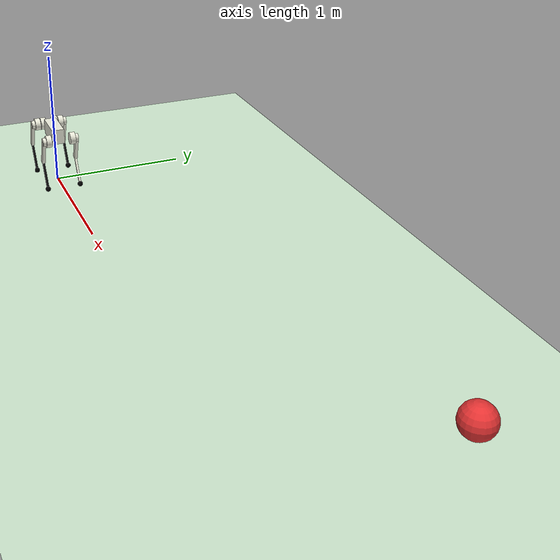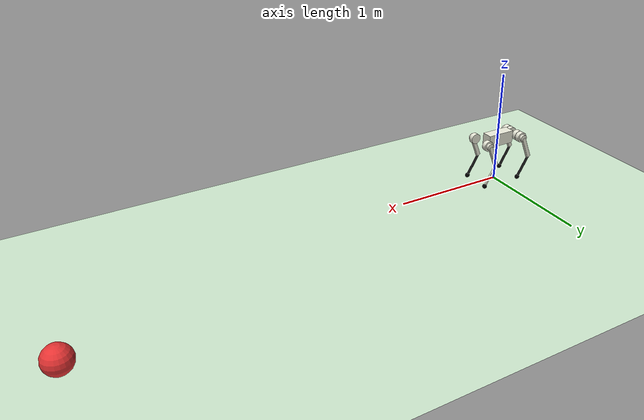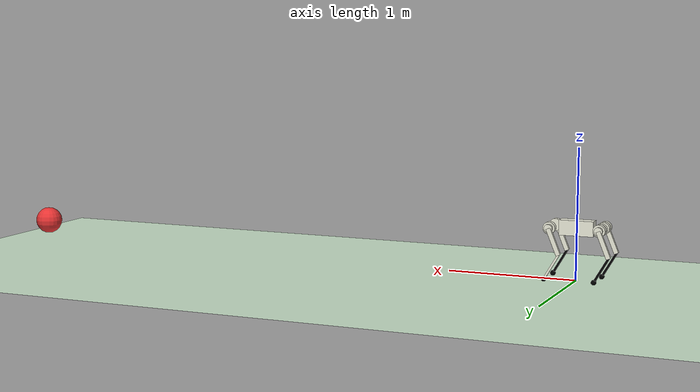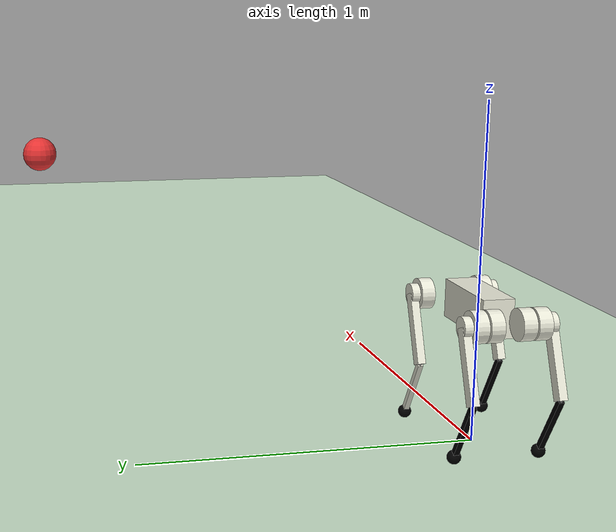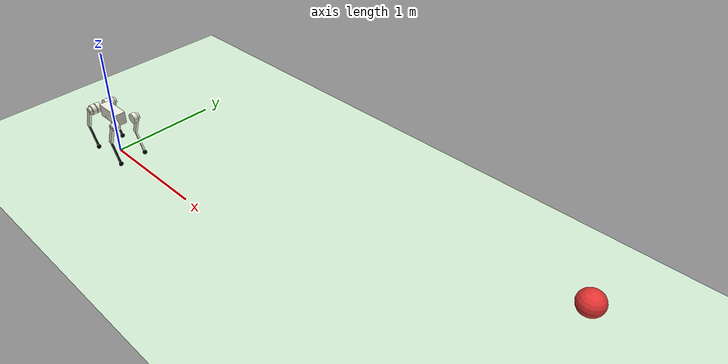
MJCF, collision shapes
<mujoco model="go1_description">
    <compiler angle="radian" coordinate="local" inertiafromgeom="true" meshdir="../meshes" texturedir="../textures" />
    <size njmax="500" nconmax="100" />
    <option integrator="RK4" timestep="0.01"/>

    <custom>
        <numeric data="0.0 0.0 0.0 0.0 0.0 0.0 0.0 0.0 0.0 0.0 0.0 0.0 0.0 0.0 0.0" name="init_qpos"/>
    </custom>

    <default>
        <geom contype="1" conaffinity="1" friction="0.6 0.3 0.3" rgba="0.5 0.6 0.7 1" margin="0.001" group="0"/>

        <light castshadow="false" diffuse="1 1 1"/>
        <motor ctrlrange="-33.5 33.5" ctrllimited="true"/>
        <camera fovy="60"/>
        <joint damping="0.01" armature="0.01" frictionloss="0.2" />

    </default>
=
    <asset>
        <mesh name="trunk" file="trunk.stl" />
        <mesh name="hip" file="hip.stl" />
        <mesh name="thigh_mirror" file="thigh_mirror.stl" />
        <mesh name="calf" file="calf.stl" />
        <mesh name="thigh" file="thigh.stl" />
    </asset>

    <asset>
        <texture type="skybox" builtin="gradient" rgb1="1.0 1.0 1.0" rgb2="1.0 1.0 1.0" width="512" height="512"/>
        <texture name="plane" type="2d" builtin="flat" rgb1="1 1 1" rgb2="1 1 1" width="512" height="512" mark="cross" markrgb="0 0 0"/>
        <material name="plane" reflectance="0.0" texture="plane" texrepeat="3 3" texuniform="true"/>
        <texture builtin="checker" height="100" name="texplane" rgb1="0 0 0" rgb2="0.8 0.8 0.8" type="2d" width="100"/>
        <material name="MatPlane" reflectance="0.5" shininess="1" specular="1" texrepeat="60 60" texture="texplane"/>
    </asset>

    <visual>
        <rgba com="0.502 1.0 0 0.5" contactforce="0.98 0.4 0.4 0.7" contactpoint="1.0 1.0 0.6 0.4"/>
        <scale com="0.2" forcewidth="0.035" contactwidth="0.10" contactheight="0.04"/>
    </visual>

    <worldbody>
        <light directional="true" diffuse=".8 .8 .8" pos="0 0 10" dir="0 0 -10"/>
        <camera name="track" mode="trackcom" pos="0 -1.3 1.6" xyaxes="1 0 0 0 0.707 0.707"/>
        <geom name='floor' type='plane' conaffinity='1' condim='3' contype='1' rgba="0.8 0.9 0.8 1" material='MatPlane' pos='0 0 0' size='40 40 1'/>

        <body name="trunk" pos="0 0 0.405">
            <inertial pos="0.0116053 0.00442221 0.000106692" quat="0.0111438 0.707126 -0.00935374 0.706938" mass="4.801" diaginertia="0.0447997 0.0366257 0.0162187" />
            <joint type="free" />
            <geom type="mesh" contype="0" conaffinity="0" group="1" rgba="0.913725 0.913725 0.847059 1" mesh="trunk" />
            <geom name="trunk" size="0.13 0.04675 0.057" type="box" rgba="0.913725 0.913725 0.847059 1" />
            <geom size="0.0005 0.0005 0.0005" pos="-0.01592 -0.06659 -0.00617" type="box" contype="0" conaffinity="0" group="1" rgba="0.8 0 0 0" />
            <geom size="0.0005 0.0005 0.0005" pos="-0.01592 -0.06659 -0.00617" type="box" rgba="0.8 0 0 0" />
            <site name="imu" pos="0 0 0"/>

            <body name="FR_hip" pos="0.1881 -0.04675 0">
                <inertial pos="-0.00406411 -0.0193463 4.50733e-06" quat="0.467526 0.531662 -0.466259 0.530431" mass="0.679292" diaginertia="0.00131334 0.00122648 0.000728484" />
                <joint name="FR_hip_joint" pos="0 0 0" axis="1 0 0" limited="true" range="-0.802851 0.802851" />
                <geom quat="0 1 0 0" type="mesh" contype="0" conaffinity="0" group="1" rgba="0.913725 0.913725 0.847059 1" mesh="hip" />
                <geom size="0.046 0.02" pos="0 -0.045 0" quat="0.707107 0.707107 0 0" type="cylinder" rgba="0.913725 0.913725 0.847059 0" />
                <geom size="0.031 0.02" pos="0 -0.07 0" quat="0.707107 0.707107 0 0" type="cylinder" rgba="0.913725 0.913725 0.847059 0" />

                <body name="FR_thigh" pos="0 -0.08 0" euler="0 0.393 0">
                    <inertial pos="-0.003468 0.018947 -0.032736" quat="0.999266 0.00067676 -0.0382978 0.000639813" mass="0.898919" diaginertia="0.00542178 0.00514246 0.000998869" />
                    <joint name="FR_thigh_joint" pos="0 0 0" axis="0 1 0" limited="true" range="-1.0472 4.18879" ref="0.393" />
                    <geom type="mesh" contype="0" conaffinity="0" group="1" rgba="0.913725 0.913725 0.847059 1" mesh="thigh_mirror" />
                    <geom name="FR_thigh" size="0.1065 0.01225 0.017" pos="0 0 -0.1065" quat="0.707107 0 0.707107 0" type="box" rgba="0.913725 0.913725 0.847059 0" />
                    <body name="FR_calf" pos="0 0 -0.213" euler="0 -0.916298 0">
                        <inertial pos="0.00455603 0.0009473 -0.147239" quat="0.762045 0.00970173 0.0180098 0.647201" mass="0.218015" diaginertia="0.00399678 0.00398122 3.99428e-05" />
                        <joint name="FR_calf_joint" pos="0 0 0" axis="0 1 0" limited="true" range="-2.69653 -0.916298" ref="-0.916298" />
                        <geom type="mesh" contype="0" conaffinity="0" group="1" rgba="0 0 0 1" mesh="calf" />
                        <geom name="FR_calf" size="0.1065 0.008 0.008" pos="0 0 -0.1065" quat="0.707107 0 0.707107 0" type="box" rgba="0 0 0 1" group="4"/>
                        <geom size="0.01" pos="0 0 -0.213" contype="0" conaffinity="0" group="1" rgba="0 0 0 1" />
                        <geom size="0.02" pos="0 0 -0.213" rgba="0 0 0 1" />
                        <site name="FR_calf"/>
                    </body>
                </body>
            </body>
            <body name="FL_hip" pos="0.1881 0.04675 0">
                <inertial pos="-0.00406411 0.0193463 4.50733e-06" quat="0.531662 0.467526 -0.530431 0.466259" mass="0.679292" diaginertia="0.00131334 0.00122648 0.000728484" />
                <joint name="FL_hip_joint" pos="0 0 0" axis="1 0 0" limited="true" range="-0.802851 0.802851" />
                <geom type="mesh" contype="0" conaffinity="0" group="1" rgba="0.913725 0.913725 0.847059 1" mesh="hip" />
                <geom size="0.046 0.02" pos="0 0.045 0" quat="0.707107 0.707107 0 0" type="cylinder" rgba="0.913725 0.913725 0.847059 0" />
                <geom size="0.031 0.02" pos="0 0.07 0" quat="0.707107 0.707107 0 0" type="cylinder" rgba="0.913725 0.913725 0.847059 0" />

                <body name="FL_thigh" pos="0 0.08 0" euler="0 0.393 0">
                    <inertial pos="-0.003468 -0.018947 -0.032736" quat="0.999266 -0.00067676 -0.0382978 -0.000639813" mass="0.898919" diaginertia="0.00542178 0.00514246 0.000998869" />
                    <joint name="FL_thigh_joint" pos="0 0 0" axis="0 1 0" limited="true" range="-1.0472 4.18879" ref="0.393" />
                    <geom type="mesh" contype="0" conaffinity="0" group="1" rgba="0.913725 0.913725 0.847059 1" mesh="thigh" />
                    <geom name="FL_thigh" size="0.1065 0.01225 0.017" pos="0 0 -0.1065" quat="0.707107 0 0.707107 0" type="box" rgba="0.913725 0.913725 0.847059 0" />
                    <body name="FL_calf" pos="0 0 -0.213" euler="0 -0.916298 0">
                        <inertial pos="0.00455603 0.0009473 -0.147239" quat="0.762045 0.00970173 0.0180098 0.647201" mass="0.218015" diaginertia="0.00399678 0.00398122 3.99428e-05" />
                        <joint name="FL_calf_joint" pos="0 0 0" axis="0 1 0" limited="true" range="-2.69653 -0.916298" ref="-0.916298" />
                        <geom type="mesh" contype="0" conaffinity="0" group="1" rgba="0 0 0 1" mesh="calf" />
                        <geom name="FL_calf" size="0.1065 0.008 0.008" pos="0 0 -0.1065" quat="0.707107 0 0.707107 0" type="box" rgba="0.913725 0.913725 0.847059 1" group="4"/>
                        <geom size="0.01" pos="0 0 -0.213" contype="0" conaffinity="0" group="1" rgba="0 0 0 1" />
                        <geom size="0.02" pos="0 0 -0.213" rgba="0 0 0 1" />
                        <site name="FL_calf"/>
                    </body>
                </body>
            </body>
            <body name="RR_hip" pos="-0.1881 -0.04675 0">
                <inertial pos="0.00406411 -0.0193463 4.50733e-06" quat="0.530431 0.466259 -0.531662 0.467526" mass="0.679292" diaginertia="0.00131334 0.00122648 0.000728484" />
                <joint name="RR_hip_joint" pos="0 0 0" axis="1 0 0" limited="true" range="-0.802851 0.802851" />
                <geom quat="0 0 0 -1" type="mesh" contype="0" conaffinity="0" group="1" rgba="0.913725 0.913725 0.847059 1" mesh="hip" />
                <geom size="0.046 0.02" quat="0.707107 0.707107 0 0" type="cylinder" rgba="0.913725 0.913725 0.847059 1" />
                <geom size="0.046 0.02" pos="0 -0.045 0" quat="0.707107 0.707107 0 0" type="cylinder" rgba="0.913725 0.913725 0.847059 0" />
                <geom size="0.031 0.02" pos="0 -0.07 0" quat="0.707107 0.707107 0 0" type="cylinder" rgba="0.913725 0.913725 0.847059 0" />

                <body name="RR_thigh" pos="0 -0.08 0" euler="0 0.393 0">
                    <inertial pos="-0.003468 0.018947 -0.032736" quat="0.999266 0.00067676 -0.0382978 0.000639813" mass="0.898919" diaginertia="0.00542178 0.00514246 0.000998869" />
                    <joint name="RR_thigh_joint" pos="0 0 0" axis="0 1 0" limited="true" range="-1.0472 4.18879" ref="0.393" />
                    <geom type="mesh" contype="0" conaffinity="0" group="1" rgba="0.913725 0.913725 0.847059 1" mesh="thigh_mirror" />
                    <geom name="RR_thigh" size="0.1065 0.01225 0.017" pos="0 0 -0.1065" quat="0.707107 0 0.707107 0" type="box" rgba="0.913725 0.913725 0.847059 0" />
                    <body name="RR_calf" pos="0 0 -0.213" euler="0 -0.916298 0">
                        <inertial pos="0.00455603 0.0009473 -0.147239" quat="0.762045 0.00970173 0.0180098 0.647201" mass="0.218015" diaginertia="0.00399678 0.00398122 3.99428e-05" />
                        <joint name="RR_calf_joint" pos="0 0 0" axis="0 1 0" limited="true" range="-2.69653 -0.916298" ref="-0.916298" />
                        <geom type="mesh" contype="0" conaffinity="0" group="1" rgba="0 0 0 1" mesh="calf" />
                        <geom name="RR_calf" size="0.1065 0.008 0.008" pos="0 0 -0.1065" quat="0.707107 0 0.707107 0" type="box" rgba="0 0 0 1" group="4"/>
                        <geom size="0.01" pos="0 0 -0.213" contype="0" conaffinity="0" group="1" rgba="0 0 0 1" />
                        <geom size="0.02" pos="0 0 -0.213" rgba="0 0 0 1" />
                        <site name="RR_calf"/>
                    </body>
                </body>
            </body>
            <body name="RL_hip" pos="-0.1881 0.04675 0">
                <inertial pos="0.00406411 0.0193463 4.50733e-06" quat="0.466259 0.530431 -0.467526 0.531662" mass="0.679292" diaginertia="0.00131334 0.00122648 0.000728484" />
                <joint name="RL_hip_joint" pos="0 0 0" axis="1 0 0" limited="true" range="-0.802851 0.802851"  />
                <geom quat="0 0 1 0" type="mesh" contype="0" conaffinity="0" group="1" rgba="0.913725 0.913725 0.847059 1" mesh="hip" />
                <geom size="0.046 0.02" quat="0.707107 0.707107 0 0" type="cylinder" rgba="0.913725 0.913725 0.847059 1" />
                <geom size="0.046 0.02" pos="0 0.045 0" quat="0.707107 0.707107 0 0" type="cylinder" rgba="0.913725 0.913725 0.847059 0" />
                <geom size="0.031 0.02" pos="0 0.07 0" quat="0.707107 0.707107 0 0" type="cylinder" rgba="0.913725 0.913725 0.847059 0" />

                <body name="RL_thigh" pos="0 0.08 0" euler="0 0.393 0">
                    <inertial pos="-0.003468 -0.018947 -0.032736" quat="0.999266 -0.00067676 -0.0382978 -0.000639813" mass="0.898919" diaginertia="0.00542178 0.00514246 0.000998869" />
                    <joint name="RL_thigh_joint" pos="0 0 0" axis="0 1 0" limited="true" range="-1.0472 4.18879" ref="0.393" />
                    <geom type="mesh" contype="0" conaffinity="0" group="1" rgba="0.913725 0.913725 0.847059 1" mesh="thigh" />
                    <geom name = "RL_thigh" size="0.1065 0.01225 0.017" pos="0 0 -0.1065" quat="0.707107 0 0.707107 0" type="box" rgba="0.913725 0.913725 0.847059 0" />
                    <body name="RL_calf" pos="0 0 -0.213" euler="0 -0.916298 0">
                        <inertial pos="0.00455603 0.0009473 -0.147239" quat="0.762045 0.00970173 0.0180098 0.647201" mass="0.218015" diaginertia="0.00399678 0.00398122 3.99428e-05" />
                        <joint name="RL_calf_joint" pos="0 0 0" axis="0 1 0" limited="true" range="-2.69653 -0.916298" ref="-0.916298" />
                        <geom type="mesh" contype="0" conaffinity="0" group="1" rgba="0 0 0 1" mesh="calf" />
                        <geom name="RL_calf" size="0.1065 0.008 0.008" pos="0 0 -0.1065" quat="0.707107 0 0.707107 0" type="box" rgba="0 0 0 1" group="4"/>
                        <geom size="0.01" pos="0 0 -0.213" contype="0" conaffinity="0" group="1" rgba="0 0 0 1" />
                        <geom size="0.02" pos="0 0 -0.213" rgba="0 0 0 1" />
                        <site name="RL_calf"/>
                    </body>
                </body>
            </body>
        </body>

        <!-- Target -->
		<body name="target" pos="4.0 1.0 0.35">

            <joint armature="0" axis="1 0 0" damping="0" limited="true" name="target_x" pos="0 0 0" range="-10.0 10.0" ref="4.0" stiffness="0" type="slide"/>
			<joint armature="0" axis="0 1 0" damping="0" limited="true" name="target_y" pos="0 0 0" range="-10.0 10.0" ref="1.0" stiffness="0" type="slide"/>

			<geom conaffinity="0" contype="0" name="target" pos="0 0 0" rgba="0.9 0.2 0.2 1" size="0.10" type="sphere"/>
		</body>
    </worldbody>
    <actuator>
        <motor name="FR_hip"       gear="1" joint="FR_hip_joint"/>
        <motor name="FR_thigh"     gear="1" joint="FR_thigh_joint"/>
        <motor name="FR_calf"      gear="1" joint="FR_calf_joint"/>
        <motor name="FL_hip"       gear="1" joint="FL_hip_joint"/>
        <motor name="FL_thigh"     gear="1" joint="FL_thigh_joint"/>
        <motor name="FL_calf"      gear="1" joint="FL_calf_joint"/>
        <motor name="RR_hip"       gear="1" joint="RR_hip_joint"/>
        <motor name="RR_thigh"     gear="1" joint="RR_thigh_joint"/>
        <motor name="RR_calf"      gear="1" joint="RR_calf_joint" />
        <motor name="RL_hip"       gear="1" joint="RL_hip_joint"/>
        <motor name="RL_thigh"     gear="1" joint="RL_thigh_joint"/>
        <motor name="RL_calf"      gear="1" joint="RL_calf_joint"/>
    </actuator>

    <sensor>

        <touch name="force_toe_front_right" site="FR_calf"/>
        <touch name="force_toe_front_left" site="FL_calf"/>
        <touch name="force_toe_back_right" site="RR_calf"/>
        <touch name="force_toe_back_left" site="RL_calf"/>

    </sensor>
</mujoco>
